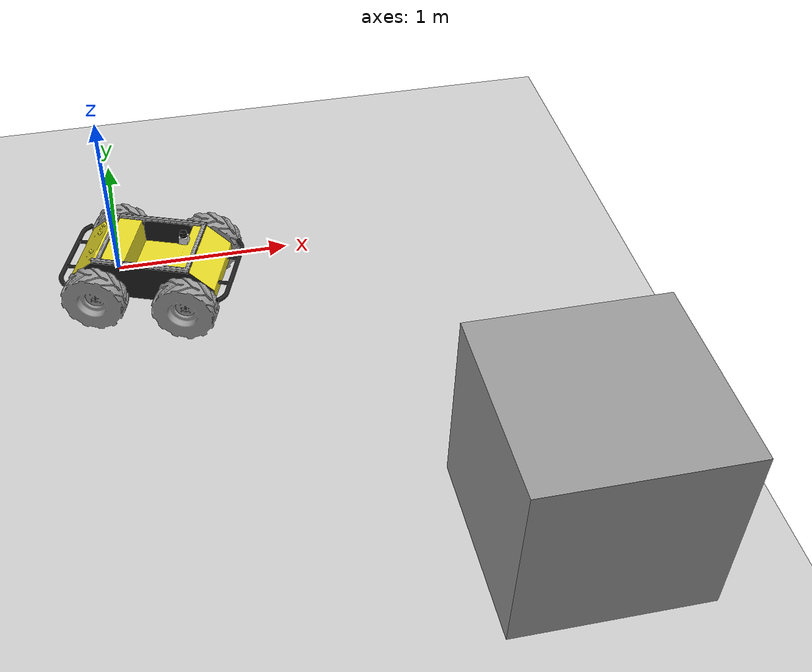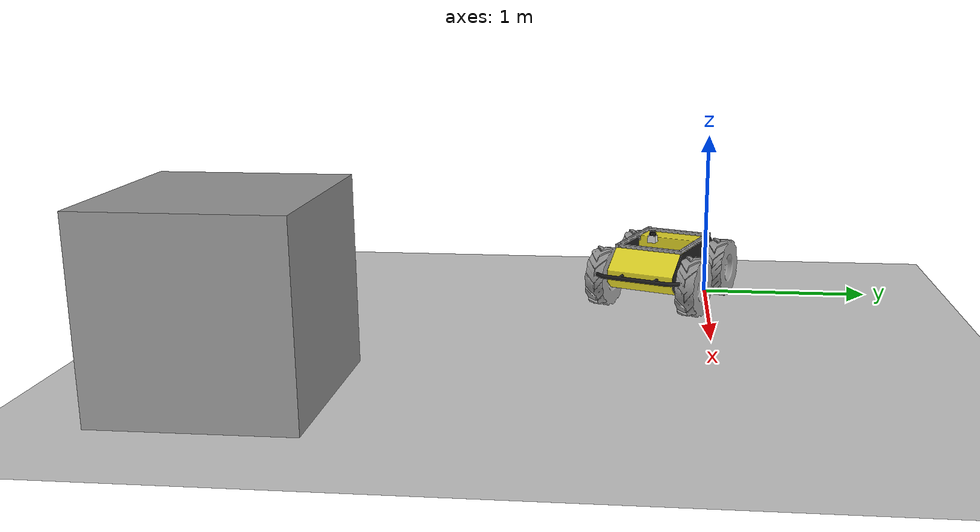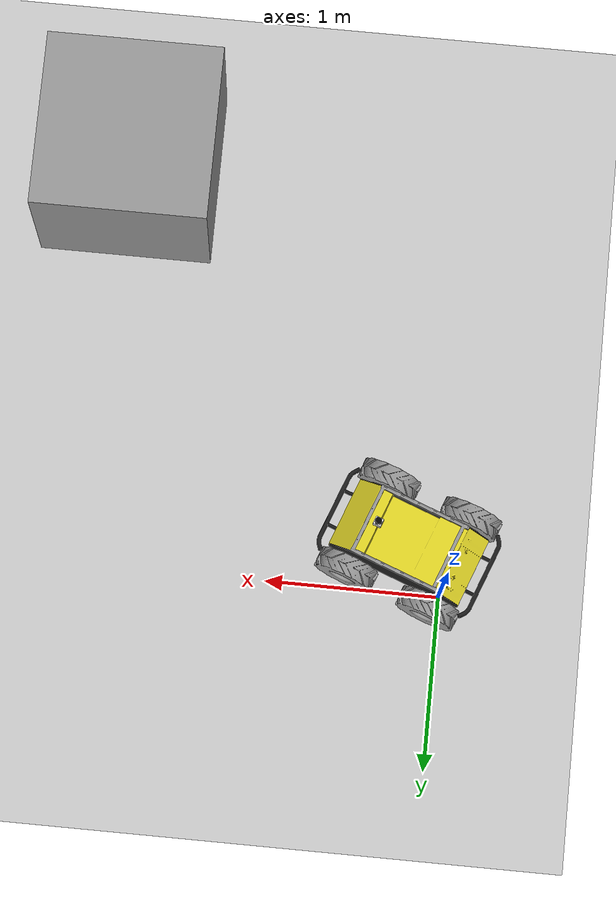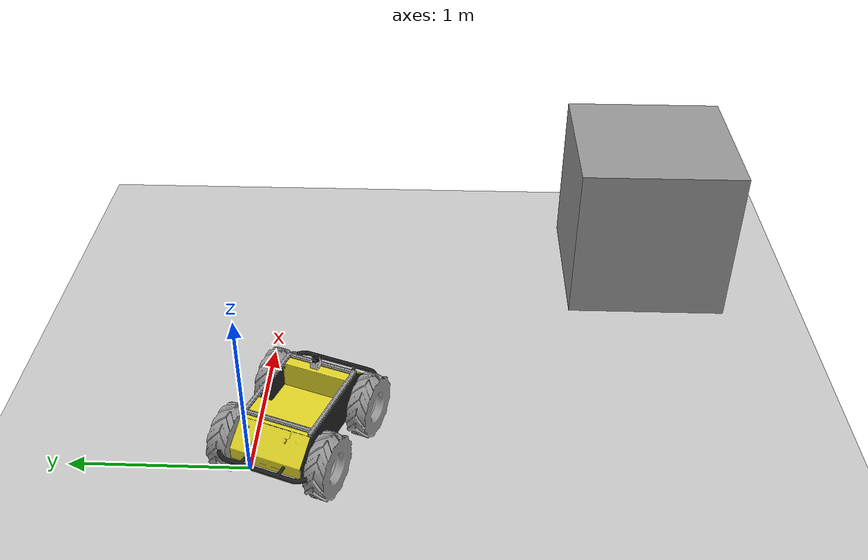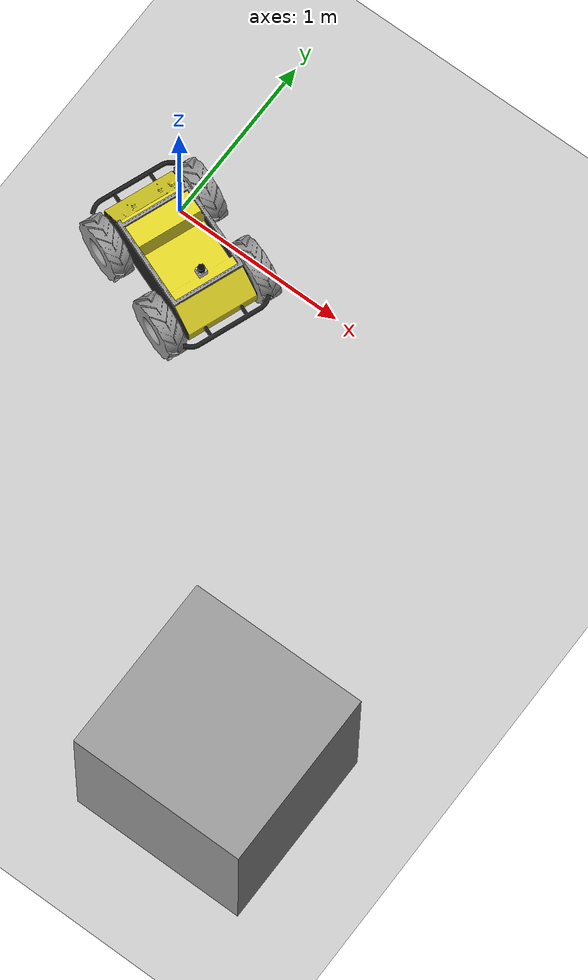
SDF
<sdf version="1.4">
 <world name="default">
  <light name="sun" type="directional">
   <pose>0 0 10 0 -0 0</pose>
   <diffuse>0.8 0.8 0.8 1</diffuse>
   <specular>0.2 0.2 0.2 1</specular>
   <attenuation>
    <range>1000</range>
    <constant>0.9</constant>
    <linear>0.01</linear>
    <quadratic>0.001</quadratic>
   </attenuation>
   <direction>-0.5 0.1 -0.9</direction>
  </light>
  <model name="ground_plane">
   <static>1</static>
   <link name="link">
    <collision name="collision">
     <geometry><plane><normal>0 0 1</normal><size>100 100</size></plane></geometry>
     <surface><friction><ode><mu>100</mu><mu2>50</mu2></ode></friction></surface>
    </collision>
    <visual name="visual">
     <cast_shadows>0</cast_shadows>
     <geometry><plane><normal>0 0 1</normal><size>100 100</size></plane></geometry>
     <material>
      <script><uri>file://media/materials/scripts/gazebo.material</uri><name>Gazebo/Grey</name></script>
     </material>
    </visual>
    <velocity_decay><linear>0</linear><angular>0</angular></velocity_decay>
   </link>
  </model>
  <physics type="ode">
   <max_step_size>0.001</max_step_size>
   <real_time_factor>1</real_time_factor>
   <real_time_update_rate>1000</real_time_update_rate>
   <gravity>0 0 -9.8</gravity>
  </physics>
  <scene><ambient>0.4 0.4 0.4 1</ambient><background>0.7 0.7 0.7 1</background><shadows>1</shadows></scene>
  <spherical_coordinates>
   <surface_model>EARTH_WGS84</surface_model>
   <latitude_deg>0</latitude_deg>
   <longitude_deg>0</longitude_deg>
   <elevation>0</elevation>
   <heading_deg>0</heading_deg>
  </spherical_coordinates>
  <model name="husky">
   <pose>0.201329 -0.265863 0.142754 1e-05 -7e-06 -0.360216</pose>
   <link name="base_link">
    <collision name="collision">
     <pose>0 0 0.1 0 -0 0</pose>
     <geometry><box><size>1.0074 0.5709 0.2675</size></box></geometry>
    </collision>
    <inertial>
     <mass>33.855</mass>
     <pose>-0.0856132 -0.000839955 0.238145 0 -0 0</pose>
     <inertia>
      <ixx>2.2343</ixx>
      <ixy>-0.023642</ixy>
      <ixz>0.275174</ixz>
      <iyy>3.42518</iyy>
      <iyz>0.00239624</iyz>
      <izz>2.1241</izz>
     </inertia>
    </inertial>
    <visual name="base">
     <geometry><mesh><uri>model://husky/meshes/base_link.stl</uri></mesh></geometry>
     <material><script><name>Gazebo/FlatBlack</name><uri>__default__</uri></script></material>
    </visual>
    <visual name="top_plate">
     <geometry><mesh><uri>model://husky/meshes/top_plate.stl</uri></mesh></geometry>
     <material><script><name>Gazebo/Yellow</name><uri>__default__</uri></script></material>
    </visual>
    <visual name="front_bumper">
     <pose>0.47 0 0.091 0 -0 0</pose>
     <geometry><mesh><uri>model://husky/meshes/bumper.stl</uri></mesh></geometry>
     <material><script><name>Gazebo/FlatBlack</name><uri>__default__</uri></script></material>
    </visual>
    <visual name="rear_bumper">
     <pose>-0.47 0 0.091 0 -0 3.141</pose>
     <geometry><mesh><uri>model://husky/meshes/bumper.stl</uri></mesh></geometry>
     <material><script><name>Gazebo/FlatBlack</name><uri>__default__</uri></script></material>
    </visual>
    <visual name="user_rail">
     <pose>0.272 0 0.245 0 -0 0</pose>
     <geometry><mesh><uri>model://husky/meshes/user_rail.stl</uri></mesh></geometry>
     <material><script><name>Gazebo/Grey</name><uri>__default__</uri></script></material>
    </visual>
    <velocity_decay><linear>0</linear><angular>0</angular></velocity_decay>
   </link>
   <link name="back_left_wheel">
    <pose>-0.256 0.285475 0.035 0 -0 0</pose>
    <inertial>
     <mass>2.6357</mass>
     <inertia>
      <ixx>0.0246688</ixx>
      <ixy>0</ixy>
      <ixz>0</ixz>
      <iyy>0.0246688</iyy>
      <iyz>0</iyz>
      <izz>0.0441058</izz>
     </inertia>
    </inertial>
    <collision name="back_left_wheel_collision">
     <pose>0 0 0 -1.5707 0 0</pose>
     <geometry><cylinder><radius>0.17775</radius><length>0.1143</length></cylinder></geometry>
     <surface>
      <friction><ode><mu>100000</mu><mu2>100000</mu2><slip1>0</slip1><slip2>0</slip2></ode></friction>
     </surface>
    </collision>
    <visual name="back_left_wheel">
     <pose>0 0 0 -3.14159 0 0</pose>
     <geometry><mesh><uri>model://husky/meshes/wheel.stl</uri></mesh></geometry>
     <material><script><name>Gazebo/Grey</name><uri>__default__</uri></script></material>
    </visual>
    <velocity_decay><linear>0</linear><angular>0</angular></velocity_decay>
   </link>
   <joint name="back_left_joint" type="revolute">
    <parent>base_link</parent>
    <child>back_left_wheel</child>
    <axis><xyz>0 1 0</xyz><limit><lower>-1e+16</lower><upper>1e+16</upper></limit></axis>
    <physics><ode><limit><cfm>0</cfm><erp>0.9</erp></limit></ode></physics>
   </joint>
   <link name="back_right_wheel">
    <pose>-0.256 -0.285475 0.035 0 -0 0</pose>
    <inertial>
     <mass>2.6357</mass>
     <inertia>
      <ixx>0.0246688</ixx>
      <ixy>0</ixy>
      <ixz>0</ixz>
      <iyy>0.0246688</iyy>
      <iyz>0</iyz>
      <izz>0.0441058</izz>
     </inertia>
    </inertial>
    <collision name="back_right_wheel_collision">
     <pose>0 0 0 -1.5707 0 0</pose>
     <geometry><cylinder><radius>0.17775</radius><length>0.1143</length></cylinder></geometry>
     <surface>
      <friction><ode><mu>100000</mu><mu2>100000</mu2><slip1>0</slip1><slip2>0</slip2></ode></friction>
     </surface>
    </collision>
    <visual name="back_right_wheel">
     <pose>0 0 0 -3.14159 0 0</pose>
     <geometry><mesh><uri>model://husky/meshes/wheel.stl</uri></mesh></geometry>
     <material><script><name>Gazebo/Grey</name><uri>__default__</uri></script></material>
    </visual>
    <velocity_decay><linear>0</linear><angular>0</angular></velocity_decay>
   </link>
   <joint name="back_right_joint" type="revolute">
    <parent>base_link</parent>
    <child>back_right_wheel</child>
    <axis><xyz>0 1 0</xyz><limit><lower>-1e+16</lower><upper>1e+16</upper></limit></axis>
    <physics><ode><limit><cfm>0</cfm><erp>0.9</erp></limit></ode></physics>
   </joint>
   <link name="front_left_wheel">
    <pose>0.256 0.285475 0.035 0 -0 0</pose>
    <inertial>
     <mass>2.6357</mass>
     <inertia>
      <ixx>0.0246688</ixx>
      <ixy>0</ixy>
      <ixz>0</ixz>
      <iyy>0.0246688</iyy>
      <iyz>0</iyz>
      <izz>0.0441058</izz>
     </inertia>
    </inertial>
    <collision name="front_left_wheel_collision">
     <pose>0 0 0 -1.5707 0 0</pose>
     <geometry><cylinder><radius>0.17775</radius><length>0.1143</length></cylinder></geometry>
     <surface>
      <friction><ode><mu>100000</mu><mu2>100000</mu2><slip1>0</slip1><slip2>0</slip2></ode></friction>
     </surface>
    </collision>
    <visual name="front_left_wheel">
     <pose>0 0 0 -3.14159 0 0</pose>
     <geometry><mesh><uri>model://husky/meshes/wheel.stl</uri></mesh></geometry>
     <material><script><name>Gazebo/Grey</name><uri>__default__</uri></script></material>
    </visual>
    <velocity_decay><linear>0</linear><angular>0</angular></velocity_decay>
   </link>
   <joint name="front_left_joint" type="revolute">
    <parent>base_link</parent>
    <child>front_left_wheel</child>
    <axis><xyz>0 1 0</xyz><limit><lower>-1e+16</lower><upper>1e+16</upper></limit></axis>
    <physics><ode><limit><cfm>0</cfm><erp>0.9</erp></limit></ode></physics>
   </joint>
   <link name="front_right_wheel">
    <pose>0.256 -0.285475 0.035 0 -0 0</pose>
    <inertial>
     <mass>2.6357</mass>
     <inertia>
      <ixx>0.0246688</ixx>
      <ixy>0</ixy>
      <ixz>0</ixz>
      <iyy>0.0246688</iyy>
      <iyz>0</iyz>
      <izz>0.0441058</izz>
     </inertia>
    </inertial>
    <collision name="front_right_wheel_collision">
     <pose>0 0 0 -1.5707 0 0</pose>
     <geometry><cylinder><radius>0.17775</radius><length>0.1143</length></cylinder></geometry>
     <surface>
      <friction><ode><mu>100000</mu><mu2>100000</mu2><slip1>0</slip1><slip2>0</slip2></ode></friction>
     </surface>
    </collision>
    <visual name="front_right_wheel">
     <pose>0 0 0 -3.14159 0 0</pose>
     <geometry><mesh><uri>model://husky/meshes/wheel.stl</uri></mesh></geometry>
     <material><script><name>Gazebo/Grey</name><uri>__default__</uri></script></material>
    </visual>
    <velocity_decay><linear>0</linear><angular>0</angular></velocity_decay>
   </link>
   <joint name="front_right_joint" type="revolute">
    <parent>base_link</parent>
    <child>front_right_wheel</child>
    <axis><xyz>0 1 0</xyz><limit><lower>-1e+16</lower><upper>1e+16</upper></limit></axis>
    <physics><ode><limit><cfm>0</cfm><erp>0.9</erp></limit></ode></physics>
   </joint>
   <link name="hokuyo::link">
    <inertial>
     <mass>0.1</mass>
     <inertia><ixx>1</ixx><ixy>0</ixy><ixz>0</ixz><iyy>1</iyy><iyz>0</iyz><izz>1</izz></inertia>
    </inertial>
    <visual name="visual"><geometry><mesh><uri>model://hokuyo/meshes/hokuyo.dae</uri></mesh></geometry></visual>
    <collision name="collision-base">
     <pose>0 0 -0.0145 0 -0 0</pose>
     <geometry><box><size>0.05 0.05 0.041</size></box></geometry>
    </collision>
    <collision name="collision-top">
     <pose>0 0 0.0205 0 -0 0</pose>
     <geometry><cylinder><radius>0.021</radius><length>0.029</length></cylinder></geometry>
    </collision>
    <sensor name="laser" type="ray">
     <pose>0.01 0 0.0175 0 -0 0</pose>
     <ray>
      <scan>
       <horizontal>
        <samples>640</samples>
        <resolution>1</resolution>
        <min_angle>-2.26889</min_angle>
        <max_angle>2.2689</max_angle>
       </horizontal>
      </scan>
      <range><min>0.08</min><max>10</max><resolution>0.01</resolution></range>
     </ray>
     <plugin name="laser" filename="libgazebo_ros_laser.so">
      <topicName>/hokuyo</topicName>
      <frameName>map</frameName>
      <always_on>1</always_on>
      <update_rate>30</update_rate>
      <visualize>1</visualize>
     </plugin>
    </sensor>
    <velocity_decay><linear>0</linear><angular>0</angular></velocity_decay>
    <pose>0.2 0 0.3 0 -0 0</pose>
   </link>
   <joint name="hokuyo_joint" type="revolute">
    <child>hokuyo::link</child>
    <parent>base_link</parent>
    <axis><xyz>0 0 1</xyz><limit><upper>0</upper><lower>0</lower></limit></axis>
   </joint>
   <static>0</static>
  </model>
  <model name="unit_box_1">
   <pose>1.99998 -2.35134 0.491398 3.23117e-27 -1e-06 2.1e-05</pose>
   <link name="link">
    <inertial>
     <mass>1</mass>
     <inertia><ixx>1</ixx><ixy>0</ixy><ixz>0</ixz><iyy>1</iyy><iyz>0</iyz><izz>1</izz></inertia>
    </inertial>
    <collision name="collision"><geometry><box><size>0.401346 0.5554 0.982795</size></box></geometry></collision>
    <visual name="visual">
     <geometry><box><size>1 1 1</size></box></geometry>
     <material>
      <script><uri>file://media/materials/scripts/gazebo.material</uri><name>Gazebo/Grey</name></script>
     </material>
    </visual>
    <velocity_decay><linear>0</linear><angular>0</angular></velocity_decay>
   </link>
   <static>0</static>
  </model>
 </world>
</sdf>
